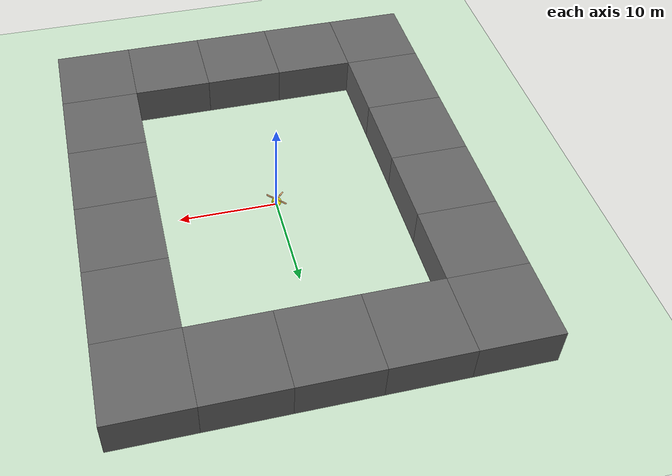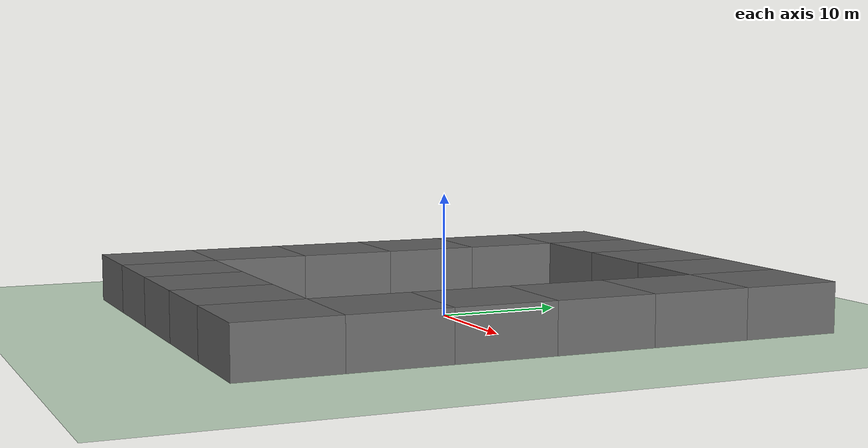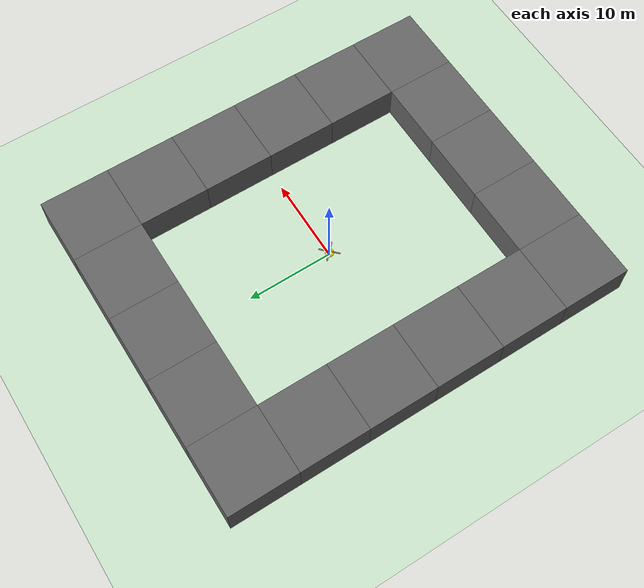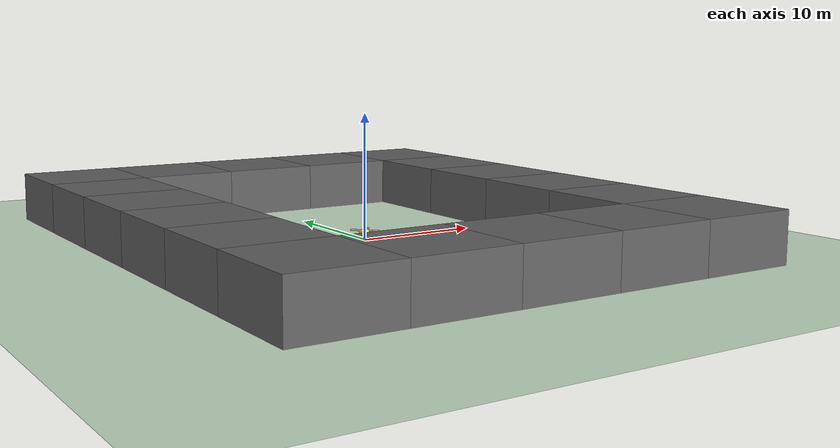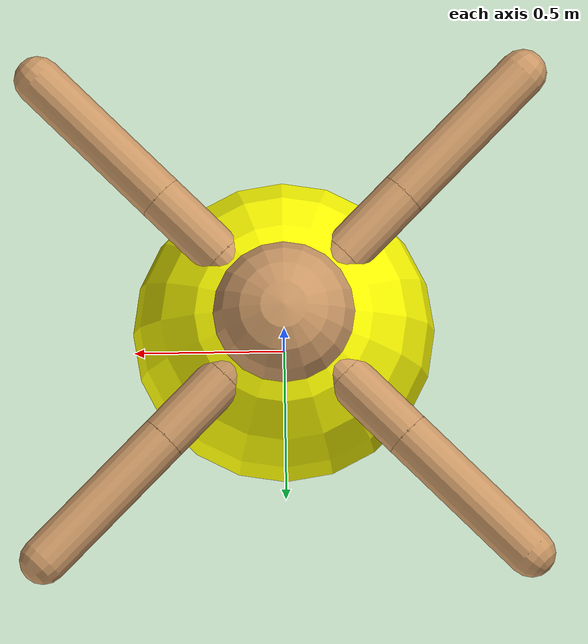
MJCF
<mujoco model="ant">
  <compiler angle="degree" coordinate="local" inertiafromgeom="true" />
  <option integrator="RK4" timestep="0.02" />
  <custom>
    <numeric data="0.0 0.0 0.55 1.0 0.0 0.0 0.0 0.0 1.0 0.0 -1.0 0.0 -1.0 0.0 1.0" name="init_qpos" />
  </custom>
  <default>
    <joint armature="1" damping="1" limited="true" />
    <geom conaffinity="0" condim="3" density="5.0" friction="1 0.5 0.5" margin="0.01" rgba="0.8 0.6 0.4 1" />
  </default>
  <asset>
    <texture builtin="gradient" height="100" rgb1="1 1 1" rgb2="0 0 0" type="skybox" width="100" />
    <texture builtin="flat" height="1278" mark="cross" markrgb="1 1 1" name="texgeom" random="0.01" rgb1="0.8 0.6 0.4" rgb2="0.8 0.6 0.4" type="cube" width="127" />
    <texture builtin="checker" height="100" name="texplane" rgb1="0 0 0" rgb2="0.8 0.8 0.8" type="2d" width="100" />
    <material name="MatPlane" reflectance="0.5" shininess="1" specular="1" texrepeat="60 60" texture="texplane" />
    <material name="geom" texture="texgeom" texuniform="true" />
  </asset>
  <worldbody>
    <light cutoff="100" diffuse="1 1 1" dir="-0 0 -1.3" directional="true" exponent="1" pos="0 0 1.3" specular=".1 .1 .1" />
    <geom conaffinity="1" condim="3" name="floor" pos="0 0 0" rgba="0.8 0.9 0.8 1" size="40 40 40" type="plane" />
    <body name="torso" pos="0 0 0.75">
      <camera mode="trackcom" name="track" pos="0 -3 0.3" xyaxes="1 0 0 0 0 1" />
      <geom name="torso_geom" pos="0 0 0" size="0.25" type="sphere" />
      <joint armature="0" axis="0 0 1" damping="0" limited="false" margin="0.01" name="root" pos="0 0 0" type="free" />
      <body name="front_left_leg" pos="0 0 0">
        <geom fromto="0.0 0.0 0.0 0.2 0.2 0.0" name="aux_1_geom" size="0.08" type="capsule" />
        <body name="aux_1" pos="0.2 0.2 0">
          <joint axis="0 0 1" name="hip_1" pos="0.0 0.0 0.0" range="-30 30" type="hinge" />
          <geom fromto="0.0 0.0 0.0 0.2 0.2 0.0" name="left_leg_geom" size="0.08" type="capsule" />
          <body pos="0.2 0.2 0">
            <joint axis="-1 1 0" name="ankle_1" pos="0.0 0.0 0.0" range="30 70" type="hinge" />
            <geom fromto="0.0 0.0 0.0 0.4 0.4 0.0" name="left_ankle_geom" size="0.08" type="capsule" />
          </body>
        </body>
      </body>
      <body name="front_right_leg" pos="0 0 0">
        <geom fromto="0.0 0.0 0.0 -0.2 0.2 0.0" name="aux_2_geom" size="0.08" type="capsule" />
        <body name="aux_2" pos="-0.2 0.2 0">
          <joint axis="0 0 1" name="hip_2" pos="0.0 0.0 0.0" range="-30 30" type="hinge" />
          <geom fromto="0.0 0.0 0.0 -0.2 0.2 0.0" name="right_leg_geom" size="0.08" type="capsule" />
          <body pos="-0.2 0.2 0">
            <joint axis="1 1 0" name="ankle_2" pos="0.0 0.0 0.0" range="-70 -30" type="hinge" />
            <geom fromto="0.0 0.0 0.0 -0.4 0.4 0.0" name="right_ankle_geom" size="0.08" type="capsule" />
          </body>
        </body>
      </body>
      <body name="back_leg" pos="0 0 0">
        <geom fromto="0.0 0.0 0.0 -0.2 -0.2 0.0" name="aux_3_geom" size="0.08" type="capsule" />
        <body name="aux_3" pos="-0.2 -0.2 0">
          <joint axis="0 0 1" name="hip_3" pos="0.0 0.0 0.0" range="-30 30" type="hinge" />
          <geom fromto="0.0 0.0 0.0 -0.2 -0.2 0.0" name="back_leg_geom" size="0.08" type="capsule" />
          <body pos="-0.2 -0.2 0">
            <joint axis="-1 1 0" name="ankle_3" pos="0.0 0.0 0.0" range="-70 -30" type="hinge" />
            <geom fromto="0.0 0.0 0.0 -0.4 -0.4 0.0" name="third_ankle_geom" size="0.08" type="capsule" />
          </body>
        </body>
      </body>
      <body name="right_back_leg" pos="0 0 0">
        <geom fromto="0.0 0.0 0.0 0.2 -0.2 0.0" name="aux_4_geom" size="0.08" type="capsule" />
        <body name="aux_4" pos="0.2 -0.2 0">
          <joint axis="0 0 1" name="hip_4" pos="0.0 0.0 0.0" range="-30 30" type="hinge" />
          <geom fromto="0.0 0.0 0.0 0.2 -0.2 0.0" name="rightback_leg_geom" size="0.08" type="capsule" />
          <body pos="0.2 -0.2 0">
            <joint axis="1 1 0" name="ankle_4" pos="0.0 0.0 0.0" range="30 70" type="hinge" />
            <geom fromto="0.0 0.0 0.0 0.4 -0.4 0.0" name="fourth_ankle_geom" size="0.08" type="capsule" />
          </body>
        </body>
      </body>
    </body>

  <geom conaffinity="1" contype="1" material="" name="block_0_0" pos="-16.000000 -20.000000 2.000000" rgba="0.4 0.4 0.4 1" size="4.000000 4.000000 2.000000" type="box" /><geom conaffinity="1" contype="1" material="" name="block_0_1" pos="-8.000000 -20.000000 2.000000" rgba="0.4 0.4 0.4 1" size="4.000000 4.000000 2.000000" type="box" /><geom conaffinity="1" contype="1" material="" name="block_0_2" pos="0.000000 -20.000000 2.000000" rgba="0.4 0.4 0.4 1" size="4.000000 4.000000 2.000000" type="box" /><geom conaffinity="1" contype="1" material="" name="block_0_3" pos="8.000000 -20.000000 2.000000" rgba="0.4 0.4 0.4 1" size="4.000000 4.000000 2.000000" type="box" /><geom conaffinity="1" contype="1" material="" name="block_0_4" pos="16.000000 -20.000000 2.000000" rgba="0.4 0.4 0.4 1" size="4.000000 4.000000 2.000000" type="box" /><geom conaffinity="1" contype="1" material="" name="block_1_0" pos="-16.000000 -12.000000 2.000000" rgba="0.4 0.4 0.4 1" size="4.000000 4.000000 2.000000" type="box" /><geom conaffinity="1" contype="1" material="" name="block_1_4" pos="16.000000 -12.000000 2.000000" rgba="0.4 0.4 0.4 1" size="4.000000 4.000000 2.000000" type="box" /><geom conaffinity="1" contype="1" material="" name="block_2_0" pos="-16.000000 -4.000000 2.000000" rgba="0.4 0.4 0.4 1" size="4.000000 4.000000 2.000000" type="box" /><geom conaffinity="1" contype="1" material="" name="block_2_4" pos="16.000000 -4.000000 2.000000" rgba="0.4 0.4 0.4 1" size="4.000000 4.000000 2.000000" type="box" /><geom conaffinity="1" contype="1" material="" name="block_3_0" pos="-16.000000 4.000000 2.000000" rgba="0.4 0.4 0.4 1" size="4.000000 4.000000 2.000000" type="box" /><geom conaffinity="1" contype="1" material="" name="block_3_4" pos="16.000000 4.000000 2.000000" rgba="0.4 0.4 0.4 1" size="4.000000 4.000000 2.000000" type="box" /><geom conaffinity="1" contype="1" material="" name="block_4_0" pos="-16.000000 12.000000 2.000000" rgba="0.4 0.4 0.4 1" size="4.000000 4.000000 2.000000" type="box" /><geom conaffinity="1" contype="1" material="" name="block_4_4" pos="16.000000 12.000000 2.000000" rgba="0.4 0.4 0.4 1" size="4.000000 4.000000 2.000000" type="box" /><geom conaffinity="1" contype="1" material="" name="block_5_0" pos="-16.000000 20.000000 2.000000" rgba="0.4 0.4 0.4 1" size="4.000000 4.000000 2.000000" type="box" /><geom conaffinity="1" contype="1" material="" name="block_5_1" pos="-8.000000 20.000000 2.000000" rgba="0.4 0.4 0.4 1" size="4.000000 4.000000 2.000000" type="box" /><geom conaffinity="1" contype="1" material="" name="block_5_2" pos="0.000000 20.000000 2.000000" rgba="0.4 0.4 0.4 1" size="4.000000 4.000000 2.000000" type="box" /><geom conaffinity="1" contype="1" material="" name="block_5_3" pos="8.000000 20.000000 2.000000" rgba="0.4 0.4 0.4 1" size="4.000000 4.000000 2.000000" type="box" /><geom conaffinity="1" contype="1" material="" name="block_5_4" pos="16.000000 20.000000 2.000000" rgba="0.4 0.4 0.4 1" size="4.000000 4.000000 2.000000" type="box" />

    <!-- Create goal and subgoal visualizations -->
    <body name="goal_platform" pos="0 0 0.4" mocap="true">
				<site type="sphere" size="0.5" rgba="1 1 0 1" />
		</body>

    <body name="subgoal_0" pos="0 0 0.4" mocap="true">
				<site type="sphere" size="0.5" rgba="1 0 1 0" />
		</body>
    <body name="subgoal_1" pos="0 0 0.4" mocap="true">
				<site type="sphere" size="0.5" rgba="0 1 0 0" />
		</body>

</worldbody>
  <actuator>
    <motor ctrllimited="true" ctrlrange="-16.0 16.0" joint="hip_4" />
    <motor ctrllimited="true" ctrlrange="-16.0 16.0" joint="ankle_4" />
    <motor ctrllimited="true" ctrlrange="-16.0 16.0" joint="hip_1" />
    <motor ctrllimited="true" ctrlrange="-16.0 16.0" joint="ankle_1" />
    <motor ctrllimited="true" ctrlrange="-16.0 16.0" joint="hip_2" />
    <motor ctrllimited="true" ctrlrange="-16.0 16.0" joint="ankle_2" />
    <motor ctrllimited="true" ctrlrange="-16.0 16.0" joint="hip_3" />
    <motor ctrllimited="true" ctrlrange="-16.0 16.0" joint="ankle_3" />
  </actuator>
</mujoco>
